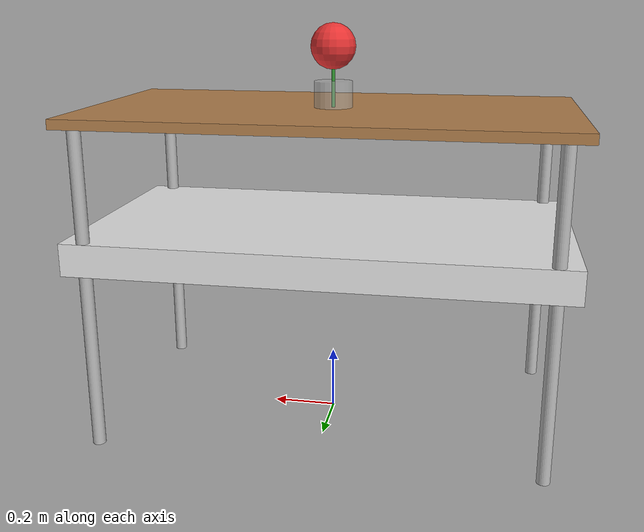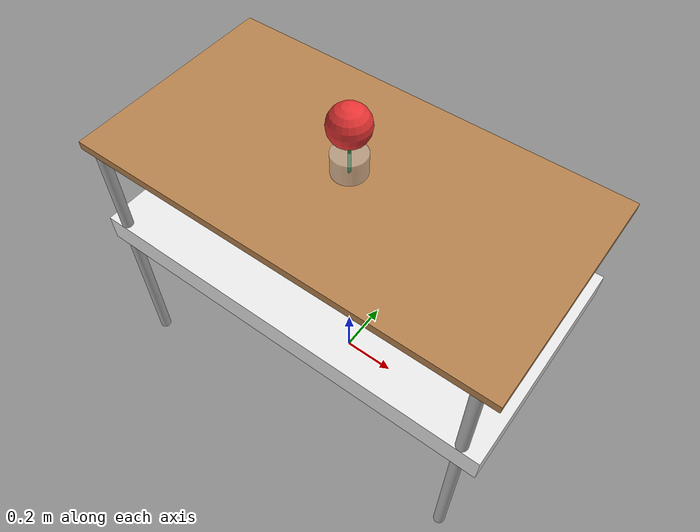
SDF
<?xml version="1.0" ?>
<sdf version="1.5">
  <model name="table">
    <static>true</static>
    <link name="link">
      <!-- Table Top -->
      <collision name="surface">
        <pose>0 0 1.0 0 0 0</pose>
        <geometry>
          <box>
            <size>1.5 0.8 0.03</size>
          </box>
        </geometry>
      </collision>
      <visual name="table_top">
        <pose>0 0 1.0 0 0 0</pose>
        <geometry>
          <box>
            <size>1.5 0.8 0.03</size>
          </box>
        </geometry>
        <material>
          <script>
            <uri>file://media/materials/scripts/gazebo.material</uri>
            <name>Gazebo/Wood</name>
          </script>
        </material>
      </visual>

      <!-- Fabric Skirt (Fixed Parameters) -->
      <visual name="skirt">
        <pose>0 0 0.6 0 0 0</pose> <!-- Raised position -->
        <geometry>
          <box>
            <size>1.5 0.8 0.1</size> <!-- Thicker skirt -->
          </box>
        </geometry>
        <material>
          <ambient>0.9 0.9 0.9 1</ambient>
          <diffuse>0.9 0.9 0.9 1</diffuse>
          <specular>0.1 0.1 0.1 1</specular>
        </material>
      </visual>

      <!-- All Four Legs Properly Defined -->
      <!-- Front Left Leg -->
      <collision name="front_left_leg">
        <pose>0.68 0.38 0.5 0 0 0</pose>
        <geometry>
          <cylinder>
            <radius>0.02</radius>
            <length>1.0</length>
          </cylinder>
        </geometry>
      </collision>
      <visual name="front_left_leg">
        <pose>0.68 0.38 0.5 0 0 0</pose>
        <geometry>
          <cylinder>
            <radius>0.02</radius>
            <length>1.0</length>
          </cylinder>
        </geometry>
        <material>
          <script>
            <uri>file://media/materials/scripts/gazebo.material</uri>
            <name>Gazebo/BrushedSteel</name>
          </script>
        </material>
      </visual>

      <!-- Front Right Leg -->
      <collision name="front_right_leg">
        <pose>0.68 -0.38 0.5 0 0 0</pose>
        <geometry>
          <cylinder>
            <radius>0.02</radius>
            <length>1.0</length>
          </cylinder>
        </geometry>
      </collision>
      <visual name="front_right_leg">
        <pose>0.68 -0.38 0.5 0 0 0</pose>
        <geometry>
          <cylinder>
            <radius>0.02</radius>
            <length>1.0</length>
          </cylinder>
        </geometry>
        <material>
          <script>
            <uri>file://media/materials/scripts/gazebo.material</uri>
            <name>Gazebo/BrushedSteel</name>
          </script>
        </material>
      </visual>

      <!-- Back Left Leg -->
      <collision name="back_left_leg">
        <pose>-0.68 0.38 0.5 0 0 0</pose>
        <geometry>
          <cylinder>
            <radius>0.02</radius>
            <length>1.0</length>
          </cylinder>
        </geometry>
      </collision>
      <visual name="back_left_leg">
        <pose>-0.68 0.38 0.5 0 0 0</pose>
        <geometry>
          <cylinder>
            <radius>0.02</radius>
            <length>1.0</length>
          </cylinder>
        </geometry>
        <material>
          <script>
            <uri>file://media/materials/scripts/gazebo.material</uri>
            <name>Gazebo/BrushedSteel</name>
          </script>
        </material>
      </visual>

      <!-- Back Right Leg -->
      <collision name="back_right_leg">
        <pose>-0.68 -0.38 0.5 0 0 0</pose>
        <geometry>
          <cylinder>
            <radius>0.02</radius>
            <length>1.0</length>
          </cylinder>
        </geometry>
      </collision>
      <visual name="back_right_leg">
        <pose>-0.68 -0.38 0.5 0 0 0</pose>
        <geometry>
          <cylinder>
            <radius>0.02</radius>
            <length>1.0</length>
          </cylinder>
        </geometry>
        <material>
          <script>
            <uri>file://media/materials/scripts/gazebo.material</uri>
            <name>Gazebo/BrushedSteel</name>
          </script>
        </material>
      </visual>

      <!-- Improved Flower Arrangement -->
      <visual name="vase">
        <pose>0 0 1.02 0 0 0</pose>
        <geometry>
          <cylinder>
            <radius>0.06</radius>
            <length>0.15</length>
          </cylinder>
        </geometry>
        <material>
          <script>
            <uri>file://media/materials/scripts/gazebo.material</uri>
            <name>Gazebo/Glass</name>
          </script>
        </material>
      </visual>

      <!-- Realistic Flower -->
      <visual name="stem">
        <pose>0 0 1.09 0 0 0</pose>
        <geometry>
          <cylinder>
            <radius>0.005</radius>
            <length>0.25</length>
          </cylinder>
        </geometry>
        <material>
          <ambient>0.1 0.4 0.1 1</ambient>
          <diffuse>0.2 0.6 0.2 1</diffuse>
        </material>
      </visual>

      <!-- Flower Petals (More Detailed) -->
      <visual name="petals">
        <pose>0 0 1.2 0 0 0</pose>
        <geometry>
          <sphere>
            <radius>0.07</radius>
          </sphere>
        </geometry>
        <material>
          <ambient>1 0.1 0.1 1</ambient>
          <diffuse>0.9 0.2 0.2 1</diffuse>
        </material>
      </visual>

      <!-- Flower Center -->
      <visual name="flower_center">
        <pose>0 0 1.2 0 0 0</pose>
        <geometry>
          <sphere>
            <radius>0.02</radius>
          </sphere>
        </geometry>
        <material>
          <ambient>0.9 0.8 0.1 1</ambient>
        </material>
      </visual>
    </link>
  </model>
</sdf>
